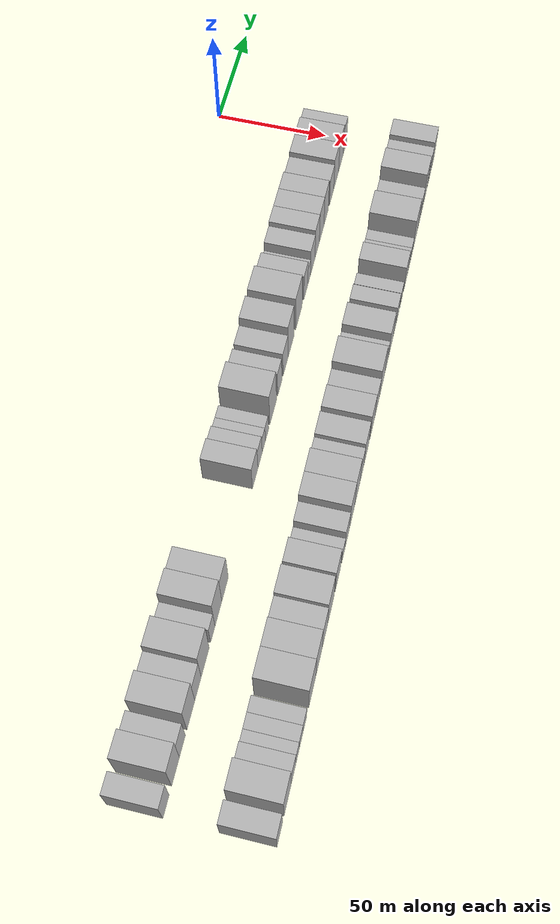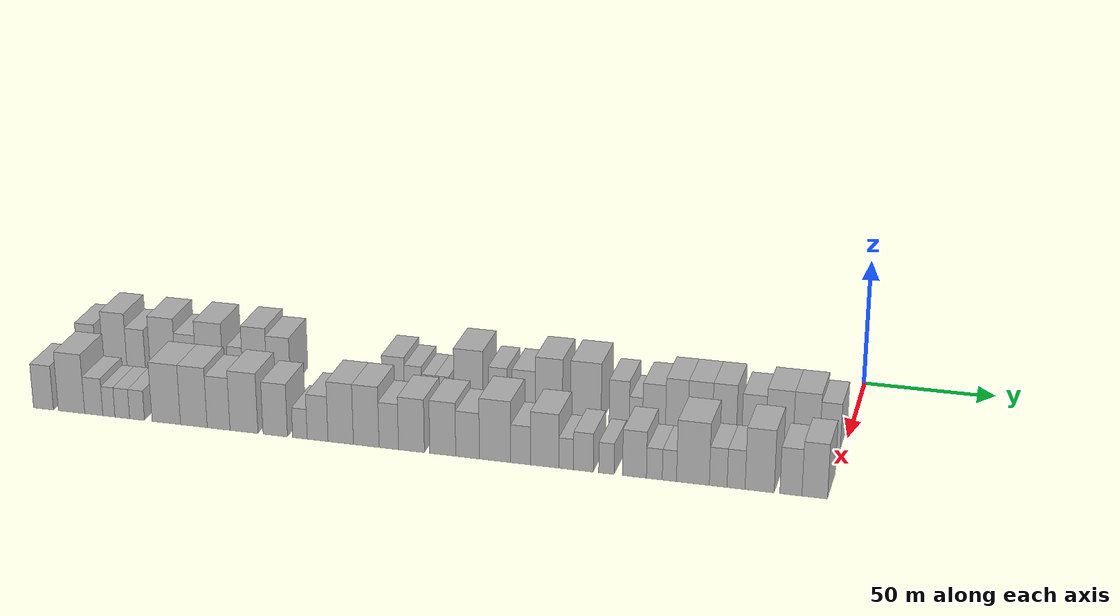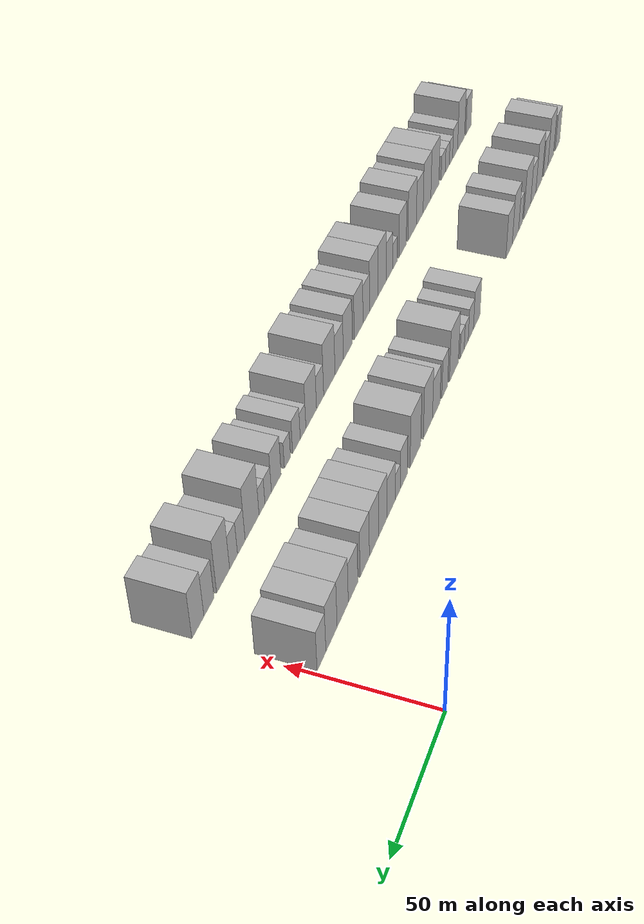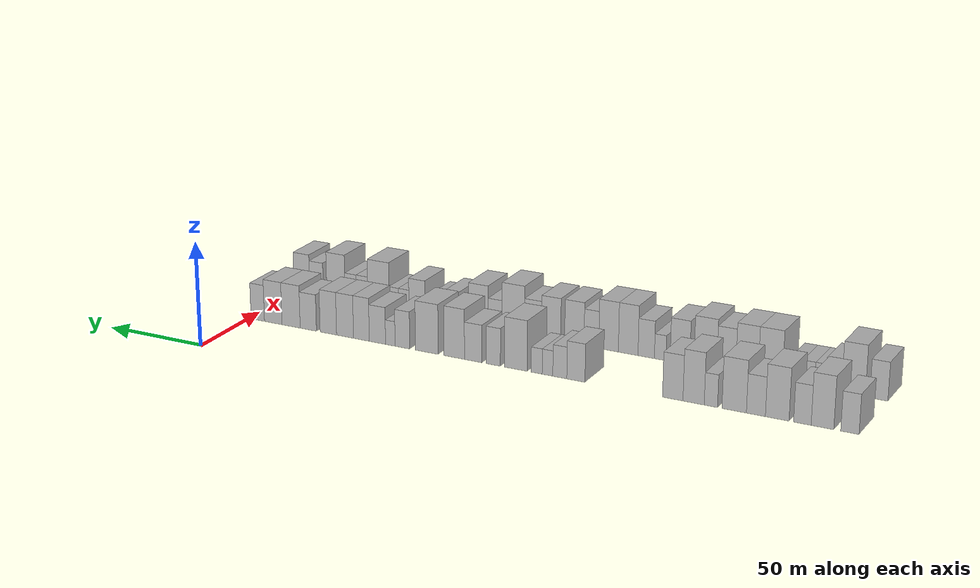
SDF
<sdf version="1.6">
 <world name="default">
  <model name="building_1">
   <static>1</static>
   <pose>50.0000 -296.0458 0 0.000000 0.000000 0.000000</pose>
   <link name="link">
    <pose>0 0 9.00 0 0 0</pose>
    <collision name="collision"><geometry><box><size>20.0000 7.9083 18.0000</size></box></geometry></collision>
    <visual name="visual">
     <cast_shadows>0</cast_shadows>
     <geometry><box><size>20.0000 7.9083 18.0000</size></box></geometry>
     <material>
      <script>
       <uri>model://HANNAS_wall/materials/scripts</uri>
       <uri>model://HANNAS_wall/materials/textures</uri>
       <name>vrc/HANNAS_wall</name>
      </script>
     </material>
    </visual>
   </link>
  </model>
  <model name="building_2">
   <static>1</static>
   <pose>50.0000 -284.1533 0 0.000000 0.000000 0.000000</pose>
   <link name="link">
    <pose>0 0 12.00 0 0 0</pose>
    <collision name="collision"><geometry><box><size>20.0000 9.8767 24.0000</size></box></geometry></collision>
    <visual name="visual">
     <cast_shadows>0</cast_shadows>
     <geometry><box><size>20.0000 9.8767 24.0000</size></box></geometry>
     <material>
      <script>
       <uri>model://HANNAS_wall/materials/scripts</uri>
       <uri>model://HANNAS_wall/materials/textures</uri>
       <name>vrc/HANNAS_wall</name>
      </script>
     </material>
    </visual>
   </link>
  </model>
  <model name="building_3">
   <static>1</static>
   <pose>50.0000 -275.3558 0 0.000000 0.000000 0.000000</pose>
   <link name="link">
    <pose>0 0 9.00 0 0 0</pose>
    <collision name="collision"><geometry><box><size>20.0000 7.7183 18.0000</size></box></geometry></collision>
    <visual name="visual">
     <cast_shadows>0</cast_shadows>
     <geometry><box><size>20.0000 7.7183 18.0000</size></box></geometry>
     <material>
      <script>
       <uri>model://HANNAS_wall/materials/scripts</uri>
       <uri>model://HANNAS_wall/materials/textures</uri>
       <name>vrc/HANNAS_wall</name>
      </script>
     </material>
    </visual>
   </link>
  </model>
  <model name="building_4">
   <static>1</static>
   <pose>50.0000 -264.2383 0 0.000000 0.000000 0.000000</pose>
   <link name="link">
    <pose>0 0 12.00 0 0 0</pose>
    <collision name="collision"><geometry><box><size>20.0000 10.5167 24.0000</size></box></geometry></collision>
    <visual name="visual">
     <cast_shadows>0</cast_shadows>
     <geometry><box><size>20.0000 10.5167 24.0000</size></box></geometry>
     <material>
      <script>
       <uri>model://HANNAS_wall/materials/scripts</uri>
       <uri>model://HANNAS_wall/materials/textures</uri>
       <name>vrc/HANNAS_wall</name>
      </script>
     </material>
    </visual>
   </link>
  </model>
  <model name="building_5">
   <static>1</static>
   <pose>50.0000 -254.7254 0 0.000000 0.000000 0.000000</pose>
   <link name="link">
    <pose>0 0 9.00 0 0 0</pose>
    <collision name="collision"><geometry><box><size>20.0000 8.5091 18.0000</size></box></geometry></collision>
    <visual name="visual">
     <cast_shadows>0</cast_shadows>
     <geometry><box><size>20.0000 8.5091 18.0000</size></box></geometry>
     <material>
      <script>
       <uri>model://HANNAS_wall/materials/scripts</uri>
       <uri>model://HANNAS_wall/materials/textures</uri>
       <name>vrc/HANNAS_wall</name>
      </script>
     </material>
    </visual>
   </link>
  </model>
  <model name="building_6">
   <static>1</static>
   <pose>50.0000 -244.9398 0 0.000000 0.000000 0.000000</pose>
   <link name="link">
    <pose>0 0 12.00 0 0 0</pose>
    <collision name="collision"><geometry><box><size>20.0000 11.0621 24.0000</size></box></geometry></collision>
    <visual name="visual">
     <cast_shadows>0</cast_shadows>
     <geometry><box><size>20.0000 11.0621 24.0000</size></box></geometry>
     <material>
      <script>
       <uri>model://HANNAS_wall/materials/scripts</uri>
       <uri>model://HANNAS_wall/materials/textures</uri>
       <name>vrc/HANNAS_wall</name>
      </script>
     </material>
    </visual>
   </link>
  </model>
  <model name="building_7">
   <static>1</static>
   <pose>50.0000 -234.3629 0 0.000000 0.000000 0.000000</pose>
   <link name="link">
    <pose>0 0 7.50 0 0 0</pose>
    <collision name="collision"><geometry><box><size>20.0000 6.0918 15.0000</size></box></geometry></collision>
    <visual name="visual">
     <cast_shadows>0</cast_shadows>
     <geometry><box><size>20.0000 6.0918 15.0000</size></box></geometry>
     <material>
      <script>
       <uri>model://HANNAS_wall/materials/scripts</uri>
       <uri>model://HANNAS_wall/materials/textures</uri>
       <name>vrc/HANNAS_wall</name>
      </script>
     </material>
    </visual>
   </link>
  </model>
  <model name="building_8">
   <static>1</static>
   <pose>50.0000 -226.4206 0 0.000000 0.000000 0.000000</pose>
   <link name="link">
    <pose>0 0 12.00 0 0 0</pose>
    <collision name="collision"><geometry><box><size>20.0000 9.7926 24.0000</size></box></geometry></collision>
    <visual name="visual">
     <cast_shadows>0</cast_shadows>
     <geometry><box><size>20.0000 9.7926 24.0000</size></box></geometry>
     <material>
      <script>
       <uri>model://HANNAS_wall/materials/scripts</uri>
       <uri>model://HANNAS_wall/materials/textures</uri>
       <name>vrc/HANNAS_wall</name>
      </script>
     </material>
    </visual>
   </link>
  </model>
  <model name="building_9">
   <static>1</static>
   <pose>50.0000 -216.7861 0 0.000000 0.000000 0.000000</pose>
   <link name="link">
    <pose>0 0 10.50 0 0 0</pose>
    <collision name="collision"><geometry><box><size>20.0000 9.4765 21.0000</size></box></geometry></collision>
    <visual name="visual">
     <cast_shadows>0</cast_shadows>
     <geometry><box><size>20.0000 9.4765 21.0000</size></box></geometry>
     <material>
      <script>
       <uri>model://HANNAS_wall/materials/scripts</uri>
       <uri>model://HANNAS_wall/materials/textures</uri>
       <name>vrc/HANNAS_wall</name>
      </script>
     </material>
    </visual>
   </link>
  </model>
  <model name="building_10">
   <static>1</static>
   <pose>50.0000 -170.8512 0 0.000000 0.000000 0.000000</pose>
   <link name="link">
    <pose>0 0 9.00 0 0 0</pose>
    <collision name="collision"><geometry><box><size>20.0000 8.7978 18.0000</size></box></geometry></collision>
    <visual name="visual">
     <cast_shadows>0</cast_shadows>
     <geometry><box><size>20.0000 8.7978 18.0000</size></box></geometry>
     <material>
      <script>
       <uri>model://HANNAS_wall/materials/scripts</uri>
       <uri>model://HANNAS_wall/materials/textures</uri>
       <name>vrc/HANNAS_wall</name>
      </script>
     </material>
    </visual>
   </link>
  </model>
  <model name="building_11">
   <static>1</static>
   <pose>50.0000 -163.0367 0 0.000000 0.000000 0.000000</pose>
   <link name="link">
    <pose>0 0 7.50 0 0 0</pose>
    <collision name="collision"><geometry><box><size>20.0000 6.8313 15.0000</size></box></geometry></collision>
    <visual name="visual">
     <cast_shadows>0</cast_shadows>
     <geometry><box><size>20.0000 6.8313 15.0000</size></box></geometry>
     <material>
      <script>
       <uri>model://HANNAS_wall/materials/scripts</uri>
       <uri>model://HANNAS_wall/materials/textures</uri>
       <name>vrc/HANNAS_wall</name>
      </script>
     </material>
    </visual>
   </link>
  </model>
  <model name="building_12">
   <static>1</static>
   <pose>50.0000 -157.0104 0 0.000000 0.000000 0.000000</pose>
   <link name="link">
    <pose>0 0 6.00 0 0 0</pose>
    <collision name="collision"><geometry><box><size>20.0000 5.2213 12.0000</size></box></geometry></collision>
    <visual name="visual">
     <cast_shadows>0</cast_shadows>
     <geometry><box><size>20.0000 5.2213 12.0000</size></box></geometry>
     <material>
      <script>
       <uri>model://HANNAS_wall/materials/scripts</uri>
       <uri>model://HANNAS_wall/materials/textures</uri>
       <name>vrc/HANNAS_wall</name>
      </script>
     </material>
    </visual>
   </link>
  </model>
  <model name="building_13">
   <static>1</static>
   <pose>50.0000 -151.7014 0 0.000000 0.000000 0.000000</pose>
   <link name="link">
    <pose>0 0 6.00 0 0 0</pose>
    <collision name="collision"><geometry><box><size>20.0000 5.3968 12.0000</size></box></geometry></collision>
    <visual name="visual">
     <cast_shadows>0</cast_shadows>
     <geometry><box><size>20.0000 5.3968 12.0000</size></box></geometry>
     <material>
      <script>
       <uri>model://HANNAS_wall/materials/scripts</uri>
       <uri>model://HANNAS_wall/materials/textures</uri>
       <name>vrc/HANNAS_wall</name>
      </script>
     </material>
    </visual>
   </link>
  </model>
  <model name="building_14">
   <static>1</static>
   <pose>50.0000 -141.3305 0 0.000000 0.000000 0.000000</pose>
   <link name="link">
    <pose>0 0 12.00 0 0 0</pose>
    <collision name="collision"><geometry><box><size>20.0000 11.3450 24.0000</size></box></geometry></collision>
    <visual name="visual">
     <cast_shadows>0</cast_shadows>
     <geometry><box><size>20.0000 11.3450 24.0000</size></box></geometry>
     <material>
      <script>
       <uri>model://HANNAS_wall/materials/scripts</uri>
       <uri>model://HANNAS_wall/materials/textures</uri>
       <name>vrc/HANNAS_wall</name>
      </script>
     </material>
    </visual>
   </link>
  </model>
  <model name="building_15">
   <static>1</static>
   <pose>50.0000 -130.0443 0 0.000000 0.000000 0.000000</pose>
   <link name="link">
    <pose>0 0 9.00 0 0 0</pose>
    <collision name="collision"><geometry><box><size>20.0000 7.2274 18.0000</size></box></geometry></collision>
    <visual name="visual">
     <cast_shadows>0</cast_shadows>
     <geometry><box><size>20.0000 7.2274 18.0000</size></box></geometry>
     <material>
      <script>
       <uri>model://HANNAS_wall/materials/scripts</uri>
       <uri>model://HANNAS_wall/materials/textures</uri>
       <name>vrc/HANNAS_wall</name>
      </script>
     </material>
    </visual>
   </link>
  </model>
  <model name="building_16">
   <static>1</static>
   <pose>50.0000 -119.9659 0 0.000000 0.000000 0.000000</pose>
   <link name="link">
    <pose>0 0 9.00 0 0 0</pose>
    <collision name="collision"><geometry><box><size>20.0000 8.9294 18.0000</size></box></geometry></collision>
    <visual name="visual">
     <cast_shadows>0</cast_shadows>
     <geometry><box><size>20.0000 8.9294 18.0000</size></box></geometry>
     <material>
      <script>
       <uri>model://HANNAS_wall/materials/scripts</uri>
       <uri>model://HANNAS_wall/materials/textures</uri>
       <name>vrc/HANNAS_wall</name>
      </script>
     </material>
    </visual>
   </link>
  </model>
  <model name="building_17">
   <static>1</static>
   <pose>50.0000 -110.2654 0 0.000000 0.000000 0.000000</pose>
   <link name="link">
    <pose>0 0 12.00 0 0 0</pose>
    <collision name="collision"><geometry><box><size>20.0000 10.4716 24.0000</size></box></geometry></collision>
    <visual name="visual">
     <cast_shadows>0</cast_shadows>
     <geometry><box><size>20.0000 10.4716 24.0000</size></box></geometry>
     <material>
      <script>
       <uri>model://HANNAS_wall/materials/scripts</uri>
       <uri>model://HANNAS_wall/materials/textures</uri>
       <name>vrc/HANNAS_wall</name>
      </script>
     </material>
    </visual>
   </link>
  </model>
  <model name="building_18">
   <static>1</static>
   <pose>50.0000 -96.1581 0 0.000000 0.000000 0.000000</pose>
   <link name="link">
    <pose>0 0 12.00 0 0 0</pose>
    <collision name="collision"><geometry><box><size>20.0000 11.7430 24.0000</size></box></geometry></collision>
    <visual name="visual">
     <cast_shadows>0</cast_shadows>
     <geometry><box><size>20.0000 11.7430 24.0000</size></box></geometry>
     <material>
      <script>
       <uri>model://HANNAS_wall/materials/scripts</uri>
       <uri>model://HANNAS_wall/materials/textures</uri>
       <name>vrc/HANNAS_wall</name>
      </script>
     </material>
    </visual>
   </link>
  </model>
  <model name="building_19">
   <static>1</static>
   <pose>50.0000 -83.4580 0 0.000000 0.000000 0.000000</pose>
   <link name="link">
    <pose>0 0 9.00 0 0 0</pose>
    <collision name="collision"><geometry><box><size>20.0000 7.6573 18.0000</size></box></geometry></collision>
    <visual name="visual">
     <cast_shadows>0</cast_shadows>
     <geometry><box><size>20.0000 7.6573 18.0000</size></box></geometry>
     <material>
      <script>
       <uri>model://HANNAS_wall/materials/scripts</uri>
       <uri>model://HANNAS_wall/materials/textures</uri>
       <name>vrc/HANNAS_wall</name>
      </script>
     </material>
    </visual>
   </link>
  </model>
  <model name="building_20">
   <static>1</static>
   <pose>50.0000 -77.1153 0 0.000000 0.000000 0.000000</pose>
   <link name="link">
    <pose>0 0 6.00 0 0 0</pose>
    <collision name="collision"><geometry><box><size>20.0000 5.0281 12.0000</size></box></geometry></collision>
    <visual name="visual">
     <cast_shadows>0</cast_shadows>
     <geometry><box><size>20.0000 5.0281 12.0000</size></box></geometry>
     <material>
      <script>
       <uri>model://HANNAS_wall/materials/scripts</uri>
       <uri>model://HANNAS_wall/materials/textures</uri>
       <name>vrc/HANNAS_wall</name>
      </script>
     </material>
    </visual>
   </link>
  </model>
  <model name="building_21">
   <static>1</static>
   <pose>50.0000 -70.3039 0 0.000000 0.000000 0.000000</pose>
   <link name="link">
    <pose>0 0 9.00 0 0 0</pose>
    <collision name="collision"><geometry><box><size>20.0000 8.5948 18.0000</size></box></geometry></collision>
    <visual name="visual">
     <cast_shadows>0</cast_shadows>
     <geometry><box><size>20.0000 8.5948 18.0000</size></box></geometry>
     <material>
      <script>
       <uri>model://HANNAS_wall/materials/scripts</uri>
       <uri>model://HANNAS_wall/materials/textures</uri>
       <name>vrc/HANNAS_wall</name>
      </script>
     </material>
    </visual>
   </link>
  </model>
  <model name="building_22">
   <static>1</static>
   <pose>50.0000 -61.7963 0 0.000000 0.000000 0.000000</pose>
   <link name="link">
    <pose>0 0 10.50 0 0 0</pose>
    <collision name="collision"><geometry><box><size>20.0000 8.4204 21.0000</size></box></geometry></collision>
    <visual name="visual">
     <cast_shadows>0</cast_shadows>
     <geometry><box><size>20.0000 8.4204 21.0000</size></box></geometry>
     <material>
      <script>
       <uri>model://HANNAS_wall/materials/scripts</uri>
       <uri>model://HANNAS_wall/materials/textures</uri>
       <name>vrc/HANNAS_wall</name>
      </script>
     </material>
    </visual>
   </link>
  </model>
  <model name="building_23">
   <static>1</static>
   <pose>50.0000 -53.0342 0 0.000000 0.000000 0.000000</pose>
   <link name="link">
    <pose>0 0 10.50 0 0 0</pose>
    <collision name="collision"><geometry><box><size>20.0000 9.1038 21.0000</size></box></geometry></collision>
    <visual name="visual">
     <cast_shadows>0</cast_shadows>
     <geometry><box><size>20.0000 9.1038 21.0000</size></box></geometry>
     <material>
      <script>
       <uri>model://HANNAS_wall/materials/scripts</uri>
       <uri>model://HANNAS_wall/materials/textures</uri>
       <name>vrc/HANNAS_wall</name>
      </script>
     </material>
    </visual>
   </link>
  </model>
  <model name="building_24">
   <static>1</static>
   <pose>50.0000 -44.0214 0 0.000000 0.000000 0.000000</pose>
   <link name="link">
    <pose>0 0 10.50 0 0 0</pose>
    <collision name="collision"><geometry><box><size>20.0000 8.9219 21.0000</size></box></geometry></collision>
    <visual name="visual">
     <cast_shadows>0</cast_shadows>
     <geometry><box><size>20.0000 8.9219 21.0000</size></box></geometry>
     <material>
      <script>
       <uri>model://HANNAS_wall/materials/scripts</uri>
       <uri>model://HANNAS_wall/materials/textures</uri>
       <name>vrc/HANNAS_wall</name>
      </script>
     </material>
    </visual>
   </link>
  </model>
  <model name="building_25">
   <static>1</static>
   <pose>50.0000 -33.1138 0 0.000000 0.000000 0.000000</pose>
   <link name="link">
    <pose>0 0 9.00 0 0 0</pose>
    <collision name="collision"><geometry><box><size>20.0000 8.8932 18.0000</size></box></geometry></collision>
    <visual name="visual">
     <cast_shadows>0</cast_shadows>
     <geometry><box><size>20.0000 8.8932 18.0000</size></box></geometry>
     <material>
      <script>
       <uri>model://HANNAS_wall/materials/scripts</uri>
       <uri>model://HANNAS_wall/materials/textures</uri>
       <name>vrc/HANNAS_wall</name>
      </script>
     </material>
    </visual>
   </link>
  </model>
  <model name="building_26">
   <static>1</static>
   <pose>50.0000 -23.6485 0 0.000000 0.000000 0.000000</pose>
   <link name="link">
    <pose>0 0 10.50 0 0 0</pose>
    <collision name="collision"><geometry><box><size>20.0000 10.0374 21.0000</size></box></geometry></collision>
    <visual name="visual">
     <cast_shadows>0</cast_shadows>
     <geometry><box><size>20.0000 10.0374 21.0000</size></box></geometry>
     <material>
      <script>
       <uri>model://HANNAS_wall/materials/scripts</uri>
       <uri>model://HANNAS_wall/materials/textures</uri>
       <name>vrc/HANNAS_wall</name>
      </script>
     </material>
    </visual>
   </link>
  </model>
  <model name="building_27">
   <static>1</static>
   <pose>50.0000 -13.7559 0 0.000000 0.000000 0.000000</pose>
   <link name="link">
    <pose>0 0 10.50 0 0 0</pose>
    <collision name="collision"><geometry><box><size>20.0000 9.7480 21.0000</size></box></geometry></collision>
    <visual name="visual">
     <cast_shadows>0</cast_shadows>
     <geometry><box><size>20.0000 9.7480 21.0000</size></box></geometry>
     <material>
      <script>
       <uri>model://HANNAS_wall/materials/scripts</uri>
       <uri>model://HANNAS_wall/materials/textures</uri>
       <name>vrc/HANNAS_wall</name>
      </script>
     </material>
    </visual>
   </link>
  </model>
  <model name="building_28">
   <static>1</static>
   <pose>50.0000 -5.1340 0 0.000000 0.000000 0.000000</pose>
   <link name="link">
    <pose>0 0 9.00 0 0 0</pose>
    <collision name="collision"><geometry><box><size>20.0000 7.4958 18.0000</size></box></geometry></collision>
    <visual name="visual">
     <cast_shadows>0</cast_shadows>
     <geometry><box><size>20.0000 7.4958 18.0000</size></box></geometry>
     <material>
      <script>
       <uri>model://HANNAS_wall/materials/scripts</uri>
       <uri>model://HANNAS_wall/materials/textures</uri>
       <name>vrc/HANNAS_wall</name>
      </script>
     </material>
    </visual>
   </link>
  </model>
  <model name="building_62">
   <static>1</static>
   <pose>90.0000 -295.9540 0 0.000000 0.000000 0.000000</pose>
   <link name="link">
    <pose>0 0 9.00 0 0 0</pose>
    <collision name="collision"><geometry><box><size>20.0000 8.0920 18.0000</size></box></geometry></collision>
    <visual name="visual">
     <cast_shadows>0</cast_shadows>
     <geometry><box><size>20.0000 8.0920 18.0000</size></box></geometry>
     <material>
      <script>
       <uri>model://HANNAS_wall/materials/scripts</uri>
       <uri>model://HANNAS_wall/materials/textures</uri>
       <name>vrc/HANNAS_wall</name>
      </script>
     </material>
    </visual>
   </link>
  </model>
  <model name="building_63">
   <static>1</static>
   <pose>90.0000 -284.5752 0 0.000000 0.000000 0.000000</pose>
   <link name="link">
    <pose>0 0 12.00 0 0 0</pose>
    <collision name="collision"><geometry><box><size>20.0000 10.6655 24.0000</size></box></geometry></collision>
    <visual name="visual">
     <cast_shadows>0</cast_shadows>
     <geometry><box><size>20.0000 10.6655 24.0000</size></box></geometry>
     <material>
      <script>
       <uri>model://HANNAS_wall/materials/scripts</uri>
       <uri>model://HANNAS_wall/materials/textures</uri>
       <name>vrc/HANNAS_wall</name>
      </script>
     </material>
    </visual>
   </link>
  </model>
  <model name="building_64">
   <static>1</static>
   <pose>90.0000 -275.5904 0 0.000000 0.000000 0.000000</pose>
   <link name="link">
    <pose>0 0 7.50 0 0 0</pose>
    <collision name="collision"><geometry><box><size>20.0000 7.3041 15.0000</size></box></geometry></collision>
    <visual name="visual">
     <cast_shadows>0</cast_shadows>
     <geometry><box><size>20.0000 7.3041 15.0000</size></box></geometry>
     <material>
      <script>
       <uri>model://HANNAS_wall/materials/scripts</uri>
       <uri>model://HANNAS_wall/materials/textures</uri>
       <name>vrc/HANNAS_wall</name>
      </script>
     </material>
    </visual>
   </link>
  </model>
  <model name="building_65">
   <static>1</static>
   <pose>90.0000 -269.4973 0 0.000000 0.000000 0.000000</pose>
   <link name="link">
    <pose>0 0 6.00 0 0 0</pose>
    <collision name="collision"><geometry><box><size>20.0000 4.8821 12.0000</size></box></geometry></collision>
    <visual name="visual">
     <cast_shadows>0</cast_shadows>
     <geometry><box><size>20.0000 4.8821 12.0000</size></box></geometry>
     <material>
      <script>
       <uri>model://HANNAS_wall/materials/scripts</uri>
       <uri>model://HANNAS_wall/materials/textures</uri>
       <name>vrc/HANNAS_wall</name>
      </script>
     </material>
    </visual>
   </link>
  </model>
  <model name="building_66">
   <static>1</static>
   <pose>90.0000 -264.1285 0 0.000000 0.000000 0.000000</pose>
   <link name="link">
    <pose>0 0 6.00 0 0 0</pose>
    <collision name="collision"><geometry><box><size>20.0000 5.8553 12.0000</size></box></geometry></collision>
    <visual name="visual">
     <cast_shadows>0</cast_shadows>
     <geometry><box><size>20.0000 5.8553 12.0000</size></box></geometry>
     <material>
      <script>
       <uri>model://HANNAS_wall/materials/scripts</uri>
       <uri>model://HANNAS_wall/materials/textures</uri>
       <name>vrc/HANNAS_wall</name>
      </script>
     </material>
    </visual>
   </link>
  </model>
  <model name="building_67">
   <static>1</static>
   <pose>90.0000 -258.2167 0 0.000000 0.000000 0.000000</pose>
   <link name="link">
    <pose>0 0 6.00 0 0 0</pose>
    <collision name="collision"><geometry><box><size>20.0000 5.9683 12.0000</size></box></geometry></collision>
    <visual name="visual">
     <cast_shadows>0</cast_shadows>
     <geometry><box><size>20.0000 5.9683 12.0000</size></box></geometry>
     <material>
      <script>
       <uri>model://HANNAS_wall/materials/scripts</uri>
       <uri>model://HANNAS_wall/materials/textures</uri>
       <name>vrc/HANNAS_wall</name>
      </script>
     </material>
    </visual>
   </link>
  </model>
  <model name="building_68">
   <static>1</static>
   <pose>90.0000 -246.5864 0 0.000000 0.000000 0.000000</pose>
   <link name="link">
    <pose>0 0 12.00 0 0 0</pose>
    <collision name="collision"><geometry><box><size>20.0000 11.2924 24.0000</size></box></geometry></collision>
    <visual name="visual">
     <cast_shadows>0</cast_shadows>
     <geometry><box><size>20.0000 11.2924 24.0000</size></box></geometry>
     <material>
      <script>
       <uri>model://HANNAS_wall/materials/scripts</uri>
       <uri>model://HANNAS_wall/materials/textures</uri>
       <name>vrc/HANNAS_wall</name>
      </script>
     </material>
    </visual>
   </link>
  </model>
  <model name="building_69">
   <static>1</static>
   <pose>90.0000 -235.6654 0 0.000000 0.000000 0.000000</pose>
   <link name="link">
    <pose>0 0 12.00 0 0 0</pose>
    <collision name="collision"><geometry><box><size>20.0000 10.5495 24.0000</size></box></geometry></collision>
    <visual name="visual">
     <cast_shadows>0</cast_shadows>
     <geometry><box><size>20.0000 10.5495 24.0000</size></box></geometry>
     <material>
      <script>
       <uri>model://HANNAS_wall/materials/scripts</uri>
       <uri>model://HANNAS_wall/materials/textures</uri>
       <name>vrc/HANNAS_wall</name>
      </script>
     </material>
    </visual>
   </link>
  </model>
  <model name="building_70">
   <static>1</static>
   <pose>90.0000 -225.9069 0 0.000000 0.000000 0.000000</pose>
   <link name="link">
    <pose>0 0 10.50 0 0 0</pose>
    <collision name="collision"><geometry><box><size>20.0000 8.9675 21.0000</size></box></geometry></collision>
    <visual name="visual">
     <cast_shadows>0</cast_shadows>
     <geometry><box><size>20.0000 8.9675 21.0000</size></box></geometry>
     <material>
      <script>
       <uri>model://HANNAS_wall/materials/scripts</uri>
       <uri>model://HANNAS_wall/materials/textures</uri>
       <name>vrc/HANNAS_wall</name>
      </script>
     </material>
    </visual>
   </link>
  </model>
  <model name="building_71">
   <static>1</static>
   <pose>90.0000 -215.9592 0 0.000000 0.000000 0.000000</pose>
   <link name="link">
    <pose>0 0 12.00 0 0 0</pose>
    <collision name="collision"><geometry><box><size>20.0000 10.9280 24.0000</size></box></geometry></collision>
    <visual name="visual">
     <cast_shadows>0</cast_shadows>
     <geometry><box><size>20.0000 10.9280 24.0000</size></box></geometry>
     <material>
      <script>
       <uri>model://HANNAS_wall/materials/scripts</uri>
       <uri>model://HANNAS_wall/materials/textures</uri>
       <name>vrc/HANNAS_wall</name>
      </script>
     </material>
    </visual>
   </link>
  </model>
  <model name="building_72">
   <static>1</static>
   <pose>90.0000 -203.7494 0 0.000000 0.000000 0.000000</pose>
   <link name="link">
    <pose>0 0 10.50 0 0 0</pose>
    <collision name="collision"><geometry><box><size>20.0000 9.4916 21.0000</size></box></geometry></collision>
    <visual name="visual">
     <cast_shadows>0</cast_shadows>
     <geometry><box><size>20.0000 9.4916 21.0000</size></box></geometry>
     <material>
      <script>
       <uri>model://HANNAS_wall/materials/scripts</uri>
       <uri>model://HANNAS_wall/materials/textures</uri>
       <name>vrc/HANNAS_wall</name>
      </script>
     </material>
    </visual>
   </link>
  </model>
  <model name="building_73">
   <static>1</static>
   <pose>90.0000 -194.1893 0 0.000000 0.000000 0.000000</pose>
   <link name="link">
    <pose>0 0 6.00 0 0 0</pose>
    <collision name="collision"><geometry><box><size>20.0000 5.6286 12.0000</size></box></geometry></collision>
    <visual name="visual">
     <cast_shadows>0</cast_shadows>
     <geometry><box><size>20.0000 5.6286 12.0000</size></box></geometry>
     <material>
      <script>
       <uri>model://HANNAS_wall/materials/scripts</uri>
       <uri>model://HANNAS_wall/materials/textures</uri>
       <name>vrc/HANNAS_wall</name>
      </script>
     </material>
    </visual>
   </link>
  </model>
  <model name="building_74">
   <static>1</static>
   <pose>90.0000 -187.3581 0 0.000000 0.000000 0.000000</pose>
   <link name="link">
    <pose>0 0 9.00 0 0 0</pose>
    <collision name="collision"><geometry><box><size>20.0000 8.0338 18.0000</size></box></geometry></collision>
    <visual name="visual">
     <cast_shadows>0</cast_shadows>
     <geometry><box><size>20.0000 8.0338 18.0000</size></box></geometry>
     <material>
      <script>
       <uri>model://HANNAS_wall/materials/scripts</uri>
       <uri>model://HANNAS_wall/materials/textures</uri>
       <name>vrc/HANNAS_wall</name>
      </script>
     </material>
    </visual>
   </link>
  </model>
  <model name="building_75">
   <static>1</static>
   <pose>90.0000 -178.4802 0 0.000000 0.000000 0.000000</pose>
   <link name="link">
    <pose>0 0 12.00 0 0 0</pose>
    <collision name="collision"><geometry><box><size>20.0000 9.7219 24.0000</size></box></geometry></collision>
    <visual name="visual">
     <cast_shadows>0</cast_shadows>
     <geometry><box><size>20.0000 9.7219 24.0000</size></box></geometry>
     <material>
      <script>
       <uri>model://HANNAS_wall/materials/scripts</uri>
       <uri>model://HANNAS_wall/materials/textures</uri>
       <name>vrc/HANNAS_wall</name>
      </script>
     </material>
    </visual>
   </link>
  </model>
  <model name="building_76">
   <static>1</static>
   <pose>90.0000 -168.7378 0 0.000000 0.000000 0.000000</pose>
   <link name="link">
    <pose>0 0 12.00 0 0 0</pose>
    <collision name="collision"><geometry><box><size>20.0000 9.7629 24.0000</size></box></geometry></collision>
    <visual name="visual">
     <cast_shadows>0</cast_shadows>
     <geometry><box><size>20.0000 9.7629 24.0000</size></box></geometry>
     <material>
      <script>
       <uri>model://HANNAS_wall/materials/scripts</uri>
       <uri>model://HANNAS_wall/materials/textures</uri>
       <name>vrc/HANNAS_wall</name>
      </script>
     </material>
    </visual>
   </link>
  </model>
  <model name="building_77">
   <static>1</static>
   <pose>90.0000 -160.1544 0 0.000000 0.000000 0.000000</pose>
   <link name="link">
    <pose>0 0 9.00 0 0 0</pose>
    <collision name="collision"><geometry><box><size>20.0000 7.4040 18.0000</size></box></geometry></collision>
    <visual name="visual">
     <cast_shadows>0</cast_shadows>
     <geometry><box><size>20.0000 7.4040 18.0000</size></box></geometry>
     <material>
      <script>
       <uri>model://HANNAS_wall/materials/scripts</uri>
       <uri>model://HANNAS_wall/materials/textures</uri>
       <name>vrc/HANNAS_wall</name>
      </script>
     </material>
    </visual>
   </link>
  </model>
  <model name="building_78">
   <static>1</static>
   <pose>90.0000 -151.5461 0 0.000000 0.000000 0.000000</pose>
   <link name="link">
    <pose>0 0 10.50 0 0 0</pose>
    <collision name="collision"><geometry><box><size>20.0000 9.8125 21.0000</size></box></geometry></collision>
    <visual name="visual">
     <cast_shadows>0</cast_shadows>
     <geometry><box><size>20.0000 9.8125 21.0000</size></box></geometry>
     <material>
      <script>
       <uri>model://HANNAS_wall/materials/scripts</uri>
       <uri>model://HANNAS_wall/materials/textures</uri>
       <name>vrc/HANNAS_wall</name>
      </script>
     </material>
    </visual>
   </link>
  </model>
  <model name="building_79">
   <static>1</static>
   <pose>90.0000 -139.7711 0 0.000000 0.000000 0.000000</pose>
   <link name="link">
    <pose>0 0 10.50 0 0 0</pose>
    <collision name="collision"><geometry><box><size>20.0000 9.7374 21.0000</size></box></geometry></collision>
    <visual name="visual">
     <cast_shadows>0</cast_shadows>
     <geometry><box><size>20.0000 9.7374 21.0000</size></box></geometry>
     <material>
      <script>
       <uri>model://HANNAS_wall/materials/scripts</uri>
       <uri>model://HANNAS_wall/materials/textures</uri>
       <name>vrc/HANNAS_wall</name>
      </script>
     </material>
    </visual>
   </link>
  </model>
  <model name="building_80">
   <static>1</static>
   <pose>90.0000 -130.4794 0 0.000000 0.000000 0.000000</pose>
   <link name="link">
    <pose>0 0 9.00 0 0 0</pose>
    <collision name="collision"><geometry><box><size>20.0000 8.8461 18.0000</size></box></geometry></collision>
    <visual name="visual">
     <cast_shadows>0</cast_shadows>
     <geometry><box><size>20.0000 8.8461 18.0000</size></box></geometry>
     <material>
      <script>
       <uri>model://HANNAS_wall/materials/scripts</uri>
       <uri>model://HANNAS_wall/materials/textures</uri>
       <name>vrc/HANNAS_wall</name>
      </script>
     </material>
    </visual>
   </link>
  </model>
  <model name="building_81">
   <static>1</static>
   <pose>90.0000 -120.2114 0 0.000000 0.000000 0.000000</pose>
   <link name="link">
    <pose>0 0 12.00 0 0 0</pose>
    <collision name="collision"><geometry><box><size>20.0000 11.6898 24.0000</size></box></geometry></collision>
    <visual name="visual">
     <cast_shadows>0</cast_shadows>
     <geometry><box><size>20.0000 11.6898 24.0000</size></box></geometry>
     <material>
      <script>
       <uri>model://HANNAS_wall/materials/scripts</uri>
       <uri>model://HANNAS_wall/materials/textures</uri>
       <name>vrc/HANNAS_wall</name>
      </script>
     </material>
    </visual>
   </link>
  </model>
  <model name="building_82">
   <static>1</static>
   <pose>90.0000 -110.7466 0 0.000000 0.000000 0.000000</pose>
   <link name="link">
    <pose>0 0 7.50 0 0 0</pose>
    <collision name="collision"><geometry><box><size>20.0000 7.2398 15.0000</size></box></geometry></collision>
    <visual name="visual">
     <cast_shadows>0</cast_shadows>
     <geometry><box><size>20.0000 7.2398 15.0000</size></box></geometry>
     <material>
      <script>
       <uri>model://HANNAS_wall/materials/scripts</uri>
       <uri>model://HANNAS_wall/materials/textures</uri>
       <name>vrc/HANNAS_wall</name>
      </script>
     </material>
    </visual>
   </link>
  </model>
  <model name="building_83">
   <static>1</static>
   <pose>90.0000 -101.9161 0 0.000000 0.000000 0.000000</pose>
   <link name="link">
    <pose>0 0 10.50 0 0 0</pose>
    <collision name="collision"><geometry><box><size>20.0000 10.4212 21.0000</size></box></geometry></collision>
    <visual name="visual">
     <cast_shadows>0</cast_shadows>
     <geometry><box><size>20.0000 10.4212 21.0000</size></box></geometry>
     <material>
      <script>
       <uri>model://HANNAS_wall/materials/scripts</uri>
       <uri>model://HANNAS_wall/materials/textures</uri>
       <name>vrc/HANNAS_wall</name>
      </script>
     </material>
    </visual>
   </link>
  </model>
  <model name="building_84">
   <static>1</static>
   <pose>90.0000 -93.9804 0 0.000000 0.000000 0.000000</pose>
   <link name="link">
    <pose>0 0 6.00 0 0 0</pose>
    <collision name="collision"><geometry><box><size>20.0000 5.4503 12.0000</size></box></geometry></collision>
    <visual name="visual">
     <cast_shadows>0</cast_shadows>
     <geometry><box><size>20.0000 5.4503 12.0000</size></box></geometry>
     <material>
      <script>
       <uri>model://HANNAS_wall/materials/scripts</uri>
       <uri>model://HANNAS_wall/materials/textures</uri>
       <name>vrc/HANNAS_wall</name>
      </script>
     </material>
    </visual>
   </link>
  </model>
  <model name="building_85">
   <static>1</static>
   <pose>90.0000 -87.6593 0 0.000000 0.000000 0.000000</pose>
   <link name="link">
    <pose>0 0 7.50 0 0 0</pose>
    <collision name="collision"><geometry><box><size>20.0000 7.1920 15.0000</size></box></geometry></collision>
    <visual name="visual">
     <cast_shadows>0</cast_shadows>
     <geometry><box><size>20.0000 7.1920 15.0000</size></box></geometry>
     <material>
      <script>
       <uri>model://HANNAS_wall/materials/scripts</uri>
       <uri>model://HANNAS_wall/materials/textures</uri>
       <name>vrc/HANNAS_wall</name>
      </script>
     </material>
    </visual>
   </link>
  </model>
  <model name="building_86">
   <static>1</static>
   <pose>90.0000 -79.2465 0 0.000000 0.000000 0.000000</pose>
   <link name="link">
    <pose>0 0 6.00 0 0 0</pose>
    <collision name="collision"><geometry><box><size>20.0000 5.6336 12.0000</size></box></geometry></collision>
    <visual name="visual">
     <cast_shadows>0</cast_shadows>
     <geometry><box><size>20.0000 5.6336 12.0000</size></box></geometry>
     <material>
      <script>
       <uri>model://HANNAS_wall/materials/scripts</uri>
       <uri>model://HANNAS_wall/materials/textures</uri>
       <name>vrc/HANNAS_wall</name>
      </script>
     </material>
    </visual>
   </link>
  </model>
  <model name="building_87">
   <static>1</static>
   <pose>90.0000 -69.0866 0 0.000000 0.000000 0.000000</pose>
   <link name="link">
    <pose>0 0 9.00 0 0 0</pose>
    <collision name="collision"><geometry><box><size>20.0000 8.6862 18.0000</size></box></geometry></collision>
    <visual name="visual">
     <cast_shadows>0</cast_shadows>
     <geometry><box><size>20.0000 8.6862 18.0000</size></box></geometry>
     <material>
      <script>
       <uri>model://HANNAS_wall/materials/scripts</uri>
       <uri>model://HANNAS_wall/materials/textures</uri>
       <name>vrc/HANNAS_wall</name>
      </script>
     </material>
    </visual>
   </link>
  </model>
  <model name="building_88">
   <static>1</static>
   <pose>90.0000 -61.8965 0 0.000000 0.000000 0.000000</pose>
   <link name="link">
    <pose>0 0 6.00 0 0 0</pose>
    <collision name="collision"><geometry><box><size>20.0000 5.6939 12.0000</size></box></geometry></collision>
    <visual name="visual">
     <cast_shadows>0</cast_shadows>
     <geometry><box><size>20.0000 5.6939 12.0000</size></box></geometry>
     <material>
      <script>
       <uri>model://HANNAS_wall/materials/scripts</uri>
       <uri>model://HANNAS_wall/materials/textures</uri>
       <name>vrc/HANNAS_wall</name>
      </script>
     </material>
    </visual>
   </link>
  </model>
  <model name="building_89">
   <static>1</static>
   <pose>90.0000 -56.4812 0 0.000000 0.000000 0.000000</pose>
   <link name="link">
    <pose>0 0 6.00 0 0 0</pose>
    <collision name="collision"><geometry><box><size>20.0000 5.1366 12.0000</size></box></geometry></collision>
    <visual name="visual">
     <cast_shadows>0</cast_shadows>
     <geometry><box><size>20.0000 5.1366 12.0000</size></box></geometry>
     <material>
      <script>
       <uri>model://HANNAS_wall/materials/scripts</uri>
       <uri>model://HANNAS_wall/materials/textures</uri>
       <name>vrc/HANNAS_wall</name>
      </script>
     </material>
    </visual>
   </link>
  </model>
  <model name="building_90">
   <static>1</static>
   <pose>90.0000 -48.0426 0 0.000000 0.000000 0.000000</pose>
   <link name="link">
    <pose>0 0 12.00 0 0 0</pose>
    <collision name="collision"><geometry><box><size>20.0000 11.7407 24.0000</size></box></geometry></collision>
    <visual name="visual">
     <cast_shadows>0</cast_shadows>
     <geometry><box><size>20.0000 11.7407 24.0000</size></box></geometry>
     <material>
      <script>
       <uri>model://HANNAS_wall/materials/scripts</uri>
       <uri>model://HANNAS_wall/materials/textures</uri>
       <name>vrc/HANNAS_wall</name>
      </script>
     </material>
    </visual>
   </link>
  </model>
  <model name="building_91">
   <static>1</static>
   <pose>90.0000 -39.0168 0 0.000000 0.000000 0.000000</pose>
   <link name="link">
    <pose>0 0 7.50 0 0 0</pose>
    <collision name="collision"><geometry><box><size>20.0000 6.3110 15.0000</size></box></geometry></collision>
    <visual name="visual">
     <cast_shadows>0</cast_shadows>
     <geometry><box><size>20.0000 6.3110 15.0000</size></box></geometry>
     <material>
      <script>
       <uri>model://HANNAS_wall/materials/scripts</uri>
       <uri>model://HANNAS_wall/materials/textures</uri>
       <name>vrc/HANNAS_wall</name>
      </script>
     </material>
    </visual>
   </link>
  </model>
  <model name="building_92">
   <static>1</static>
   <pose>90.0000 -32.6636 0 0.000000 0.000000 0.000000</pose>
   <link name="link">
    <pose>0 0 7.50 0 0 0</pose>
    <collision name="collision"><geometry><box><size>20.0000 6.3954 15.0000</size></box></geometry></collision>
    <visual name="visual">
     <cast_shadows>0</cast_shadows>
     <geometry><box><size>20.0000 6.3954 15.0000</size></box></geometry>
     <material>
      <script>
       <uri>model://HANNAS_wall/materials/scripts</uri>
       <uri>model://HANNAS_wall/materials/textures</uri>
       <name>vrc/HANNAS_wall</name>
      </script>
     </material>
    </visual>
   </link>
  </model>
  <model name="building_93">
   <static>1</static>
   <pose>90.0000 -24.3247 0 0.000000 0.000000 0.000000</pose>
   <link name="link">
    <pose>0 0 12.00 0 0 0</pose>
    <collision name="collision"><geometry><box><size>20.0000 10.2824 24.0000</size></box></geometry></collision>
    <visual name="visual">
     <cast_shadows>0</cast_shadows>
     <geometry><box><size>20.0000 10.2824 24.0000</size></box></geometry>
     <material>
      <script>
       <uri>model://HANNAS_wall/materials/scripts</uri>
       <uri>model://HANNAS_wall/materials/textures</uri>
       <name>vrc/HANNAS_wall</name>
      </script>
     </material>
    </visual>
   </link>
  </model>
  <model name="building_94">
   <static>1</static>
   <pose>90.0000 -13.3192 0 0.000000 0.000000 0.000000</pose>
   <link name="link">
    <pose>0 0 9.00 0 0 0</pose>
    <collision name="collision"><geometry><box><size>20.0000 7.7287 18.0000</size></box></geometry></collision>
    <visual name="visual">
     <cast_shadows>0</cast_shadows>
     <geometry><box><size>20.0000 7.7287 18.0000</size></box></geometry>
     <material>
      <script>
       <uri>model://HANNAS_wall/materials/scripts</uri>
       <uri>model://HANNAS_wall/materials/textures</uri>
       <name>vrc/HANNAS_wall</name>
      </script>
     </material>
    </visual>
   </link>
  </model>
  <model name="building_95">
   <static>1</static>
   <pose>90.0000 -4.9737 0 0.000000 0.000000 0.000000</pose>
   <link name="link">
    <pose>0 0 10.50 0 0 0</pose>
    <collision name="collision"><geometry><box><size>20.0000 8.9622 21.0000</size></box></geometry></collision>
    <visual name="visual">
     <cast_shadows>0</cast_shadows>
     <geometry><box><size>20.0000 8.9622 21.0000</size></box></geometry>
     <material>
      <script>
       <uri>model://HANNAS_wall/materials/scripts</uri>
       <uri>model://HANNAS_wall/materials/textures</uri>
       <name>vrc/HANNAS_wall</name>
      </script>
     </material>
    </visual>
   </link>
  </model>
 </world>
</sdf>
